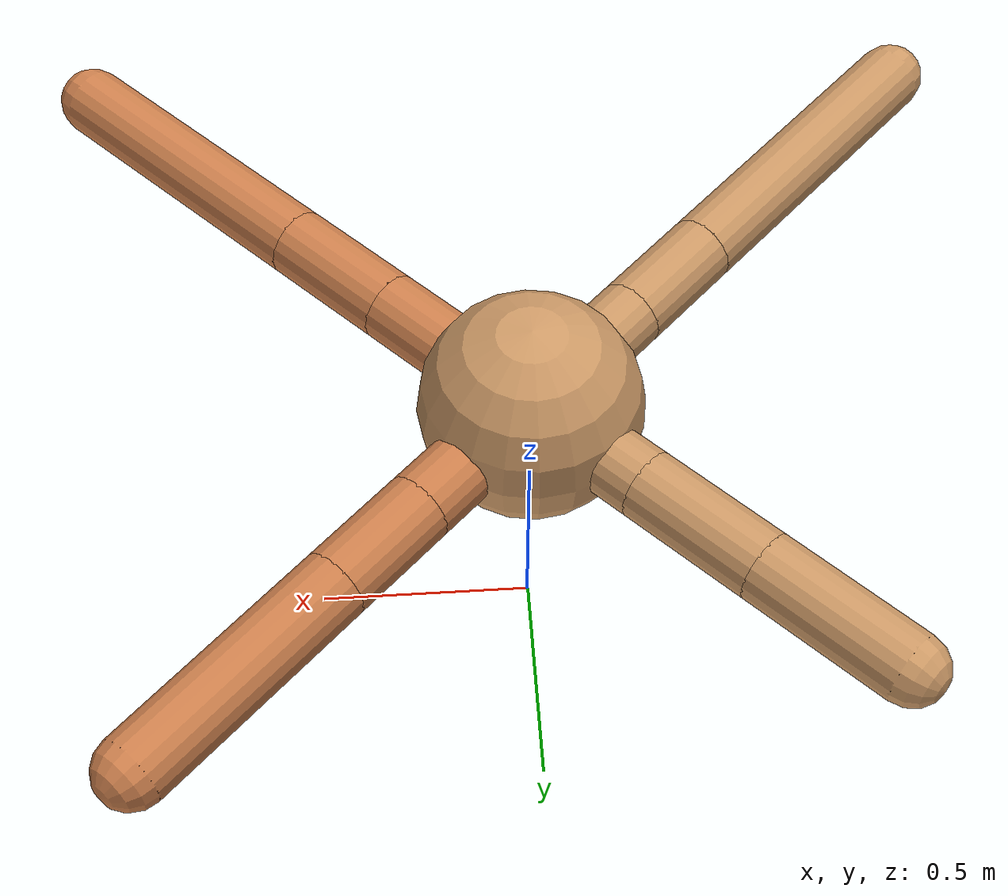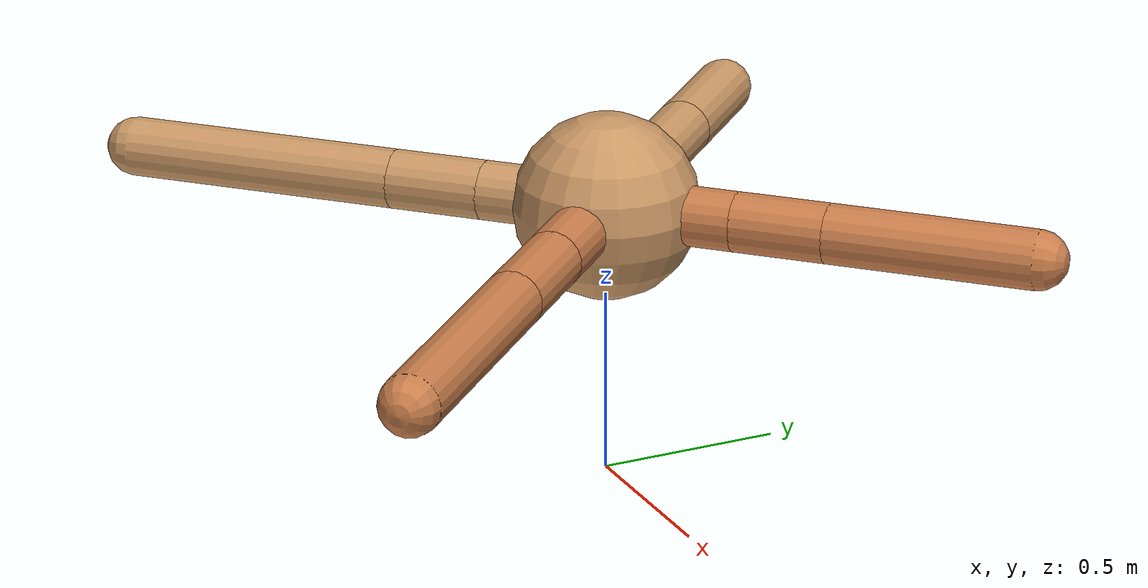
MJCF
<mujoco model="ant">
  <compiler angle="degree" coordinate="local" inertiafromgeom="true" />
  <option integrator="RK4" timestep="0.01" />
  <custom>
    <numeric data="0.0 0.0 0.55 1.0 0.0 0.0 0.0 0.0 1.0 0.0 -1.0 0.0 -1.0 0.0 1.0" name="init_qpos" />
  </custom>
  <default>
    <joint armature="1" damping="1" limited="true" />
    <geom conaffinity="0" condim="3" density="5.0" friction="1.5 0.1 0.1" margin="0.01" rgba="0.8 0.6 0.4 1" />
  </default>
  <worldbody>
    <body name="torso" pos="0 0 0.75">
      <geom name="torso_geom" pos="0 0 0" size="0.25" type="sphere" />

      <body name="front_left_leg" pos="0 0 0">
        <geom fromto="0.0 0.0 0.0 0.25319186385183384 0.25319186385183384 0.0" name="aux_1_geom" size="0.08" type="capsule" rgba=".8 .5 .3 1" />
        <body name="aux_1" pos="0.25319186385183384 0.25319186385183384 0.0">
          <joint axis="0 0 1" name="hip_1" pos="0.0 0.0 0.0" range="-40 40" type="hinge" />
          <geom fromto="0.0 0.0 0.0 0.17809108485721412 0.17809108485721412 0.0" name="left_leg_geom" size="0.08" type="capsule" rgba=".8 .5 .3 1" />
          <body pos="0.17809108485721412 0.17809108485721412 0.0" name="front_left_foot">
            <joint axis="-1 1 0" name="ankle_1" pos="0.0 0.0 0.0" range="30 100" type="hinge" />
            <geom fromto="0.0 0.0 0.0 0.39689728408470865 0.39689728408470865 0.0" name="left_ankle_geom" size="0.08" type="capsule" rgba=".8 .5 .3 1" />
          </body>
        </body>
      </body>
      <body name="front_right_leg" pos="0 0 0">
        <geom fromto="0.0 0.0 0.0 -0.22638158653820462 0.22638158653820462 0.0" name="aux_2_geom" size="0.08" type="capsule" />
        <body name="aux_2" pos="-0.22638158653820462 0.22638158653820462 0.0">
          <joint axis="0 0 1" name="hip_2" pos="0.0 0.0 0.0" range="-40 40" type="hinge" />
          <geom fromto="0.0 0.0 0.0 -0.2198353850927787 0.2198353850927787 0.0" name="right_leg_geom" size="0.08" type="capsule" />
          <body pos="-0.2198353850927787 0.2198353850927787 0.0" name="front_right_foot">
            <joint axis="1 1 0" name="ankle_2" pos="0.0 0.0 0.0" range="-100 -30" type="hinge" />
            <geom fromto="0.0 0.0 0.0 -0.2571494910141214 0.2571494910141214 0.0" name="right_ankle_geom" size="0.08" type="capsule" />
          </body>
        </body>
      </body>
      <body name="left_back_leg" pos="0 0 0">
        <geom fromto="0.0 0.0 0.0 -0.2421264586420036 -0.2421264586420036 0.0" name="aux_3_geom" size="0.08" type="capsule" />
        <body name="aux_3" pos="-0.2421264586420036 -0.2421264586420036 0.0">
          <joint axis="0 0 1" name="hip_3" pos="0.0 0.0 0.0" range="-40 40" type="hinge" />
          <geom fromto="0.0 0.0 0.0 -0.18090811318470604 -0.18090811318470604 0.0" name="back_leg_geom" size="0.08" type="capsule" />
          <body pos="-0.18090811318470604 -0.18090811318470604 0.0" name="left_back_foot">
            <joint axis="-1 1 0" name="ankle_3" pos="0.0 0.0 0.0" range="-100 -30" type="hinge" />
            <geom fromto="0.0 0.0 0.0 -0.535297692143661 -0.535297692143661 0.0" name="third_ankle_geom" size="0.08" type="capsule" />
          </body>
        </body>
      </body>
      <body name="right_back_leg" pos="0 0 0">
        <geom fromto="0.0 0.0 0.0 0.2972174282434032 -0.2972174282434032 0.0" name="aux_4_geom" size="0.08" type="capsule" rgba=".8 .5 .3 1" />
        <body name="aux_4" pos="0.2972174282434032 -0.2972174282434032 0.0">
          <joint axis="0 0 1" name="hip_4" pos="0.0 0.0 0.0" range="-40 40" type="hinge" />
          <geom fromto="0.0 0.0 0.0 0.20656706724970625 -0.20656706724970625 0.0" name="rightback_leg_geom" size="0.08" type="capsule" rgba=".8 .5 .3 1" />
          <body pos="0.20656706724970625 -0.20656706724970625 0.0" name="right_back_foot">
            <joint axis="1 1 0" name="ankle_4" pos="0.0 0.0 0.0" range="30 100" type="hinge" />
            <geom fromto="0.0 0.0 0.0 0.4954307465285597 -0.4954307465285597 0.0" name="fourth_ankle_geom" size="0.08" type="capsule" rgba=".8 .5 .3 1" />
          </body>
        </body>
      </body>
    </body>
  </worldbody>
  <actuator>
    <motor ctrllimited="true" ctrlrange="-1.0 1.0" joint="hip_4" gear="150" />
    <motor ctrllimited="true" ctrlrange="-1.0 1.0" joint="ankle_4" gear="150" />
    <motor ctrllimited="true" ctrlrange="-1.0 1.0" joint="hip_1" gear="150" />
    <motor ctrllimited="true" ctrlrange="-1.0 1.0" joint="ankle_1" gear="150" />
    <motor ctrllimited="true" ctrlrange="-1.0 1.0" joint="hip_2" gear="150" />
    <motor ctrllimited="true" ctrlrange="-1.0 1.0" joint="ankle_2" gear="150" />
    <motor ctrllimited="true" ctrlrange="-1.0 1.0" joint="hip_3" gear="150" />
    <motor ctrllimited="true" ctrlrange="-1.0 1.0" joint="ankle_3" gear="150" />
  </actuator>
</mujoco>
